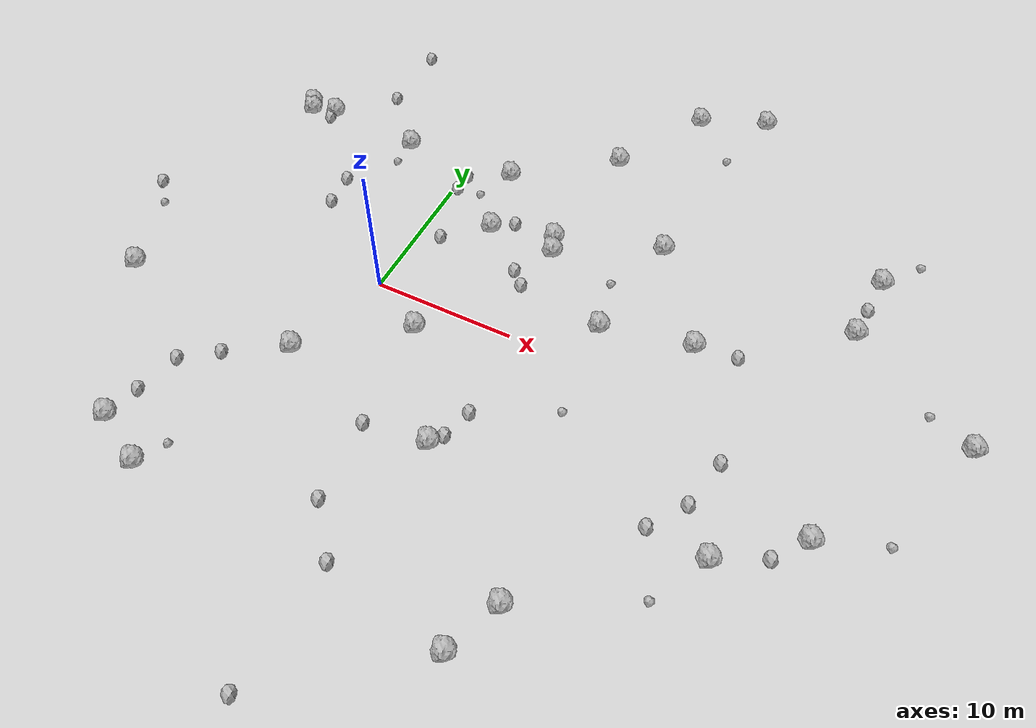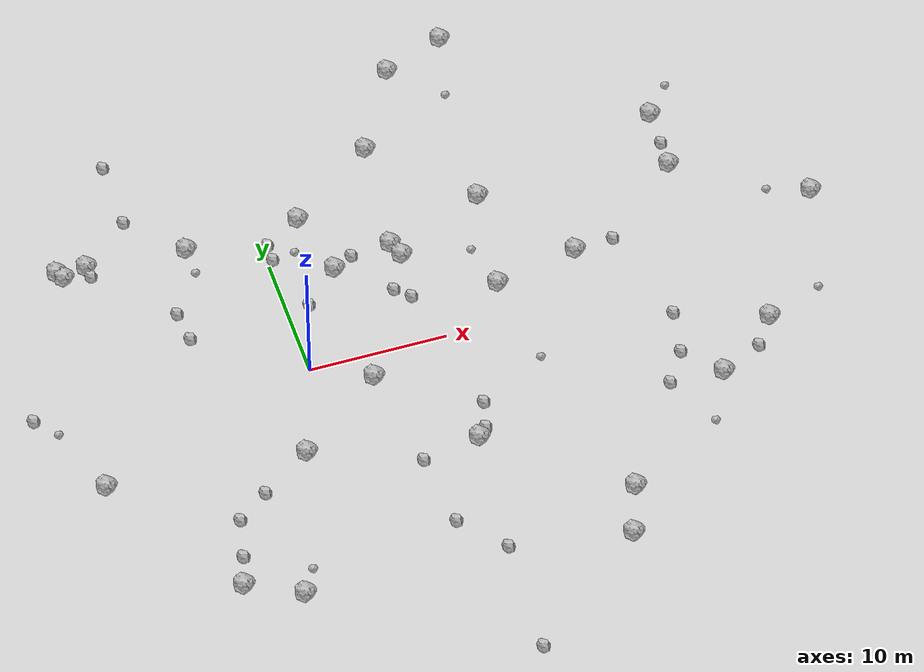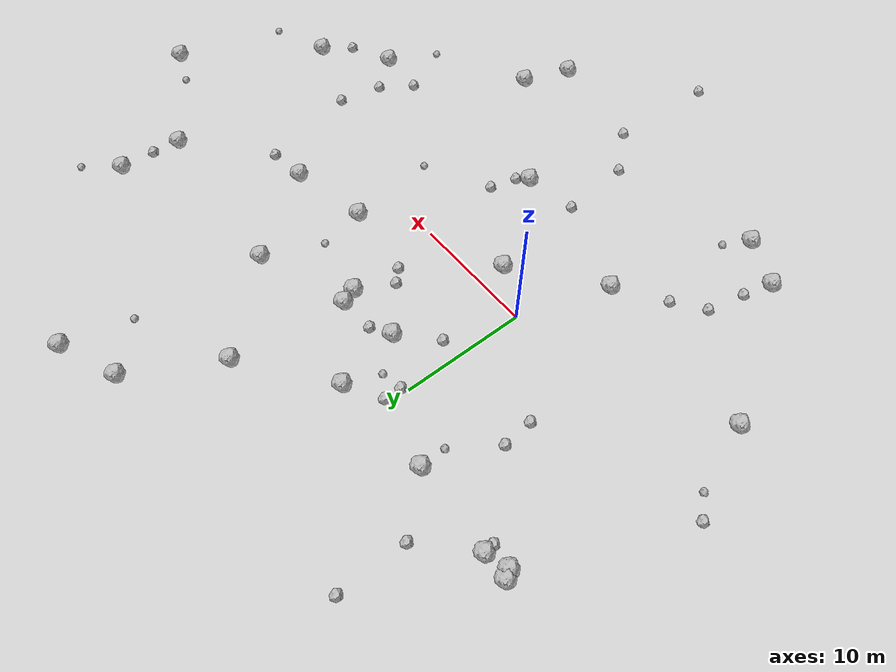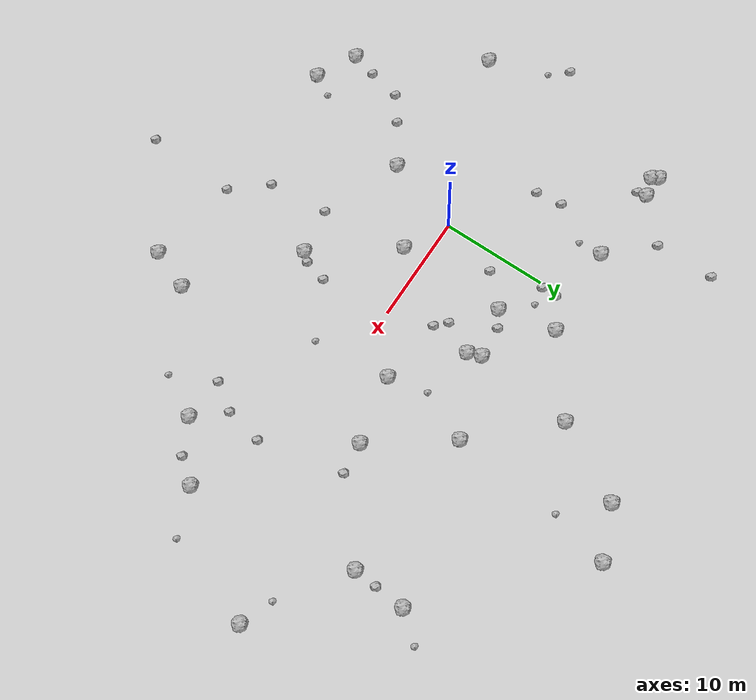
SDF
<sdf version="1.6">
 <world name="default">
  <include><uri>model://custom_ground</uri></include>
  <include><uri>model://sun</uri></include>
  <model name="rock1_0_0">
   <include><uri>model://rock1</uri><pose>-9.574869123708524 -16.79007385703004 0.5 0 0 0</pose></include>
  </model>
  <model name="rock1_0_1">
   <include><uri>model://rock1</uri><pose>-14.185482868018411 13.141109071667316 0.5 0 0 0</pose></include>
  </model>
  <model name="rock1_0_2">
   <include><uri>model://rock1</uri><pose>3.183161711726001 13.439207861971639 0.5 0 0 0</pose></include>
  </model>
  <model name="rock1_0_3">
   <include><uri>model://rock1</uri><pose>8.808953629448713 9.220673519698032 0.5 0 0 0</pose></include>
  </model>
  <model name="rock1_0_4">
   <include><uri>model://rock1</uri><pose>21.190203714288785 4.638815837935745 0.5 0 0 0</pose></include>
  </model>
  <model name="rock1_0_5">
   <include><uri>model://rock1</uri><pose>16.714045543645604 -20.561831399972156 0.5 0 0 0</pose></include>
  </model>
  <model name="rock1_0_6">
   <include><uri>model://rock1</uri><pose>4.0715729349844025 -2.1879893918191584 0.5 0 0 0</pose></include>
  </model>
  <model name="rock1_0_7">
   <include><uri>model://rock1</uri><pose>-14.54855234548559 13.726349126331328 0.5 0 0 0</pose></include>
  </model>
  <model name="rock1_0_8">
   <include><uri>model://rock1</uri><pose>14.956129256534766 3.346099133646433 0.5 0 0 0</pose></include>
  </model>
  <model name="rock1_0_9">
   <include><uri>model://rock1</uri><pose>9.809891724569248 18.482798297748445 0.5 0 0 0</pose></include>
  </model>
  <model name="rock1_0_10">
   <include><uri>model://rock1</uri><pose>18.159410886407578 -16.83518749572343 0.5 0 0 0</pose></include>
  </model>
  <model name="rock1_0_11">
   <include><uri>model://rock1</uri><pose>-12.411459987530908 13.64316098984552 0.5 0 0 0</pose></include>
  </model>
  <model name="rock1_0_12">
   <include><uri>model://rock1</uri><pose>9.276836897159338 7.968131557842007 0.5 0 0 0</pose></include>
  </model>
  <model name="rock1_0_13">
   <include><uri>model://rock1</uri><pose>4.340243749976594 8.141389771003283 0.5 0 0 0</pose></include>
  </model>
  <model name="rock1_0_14">
   <include><uri>model://rock1</uri><pose>-5.863515619924495 -18.700320483359988 0.5 0 0 0</pose></include>
  </model>
  <model name="rock1_0_15">
   <include><uri>model://rock1</uri><pose>16.187796699736538 11.677973227661752 0.5 0 0 0</pose></include>
  </model>
  <model name="rock1_0_16">
   <include><uri>model://rock1</uri><pose>9.361580387261622 -9.548358582462303 0.5 0 0 0</pose></include>
  </model>
  <model name="rock1_0_17">
   <include><uri>model://rock1</uri><pose>27.406130158293777 -9.154368287301967 0.5 0 0 0</pose></include>
  </model>
  <model name="rock1_0_18">
   <include><uri>model://rock1</uri><pose>30.71560412747546 15.438636553877814 0.5 0 0 0</pose></include>
  </model>
  <model name="rock1_0_19">
   <include><uri>model://rock1</uri><pose>30.334338108661605 10.38571048967789 0.5 0 0 0</pose></include>
  </model>
  <model name="rock1_0_20">
   <include><uri>model://rock1</uri><pose>13.667398942886912 25.483970197770248 0.5 0 0 0</pose></include>
  </model>
  <model name="rock1_0_21">
   <include><uri>model://rock1</uri><pose>-5.206692347621331 13.08040142145331 0.5 0 0 0</pose></include>
  </model>
  <model name="rock1_0_22">
   <include><uri>model://rock1</uri><pose>32.200690342745865 -5.430255425349113 0.5 0 0 0</pose></include>
  </model>
  <model name="rock1_0_23">
   <include><uri>model://rock1</uri><pose>39.226585235973246 4.870127547089943 0.5 0 0 0</pose></include>
  </model>
  <model name="rock1_0_24">
   <include><uri>model://rock1</uri><pose>18.376451594422818 27.43114792632251 0.5 0 0 0</pose></include>
  </model>
  <model name="rock1_0_25">
   <include><uri>model://rock1</uri><pose>-16.16579249229643 -5.940988652029876 0.5 0 0 0</pose></include>
  </model>
  <model name="rock1_0_26">
   <include><uri>model://rock1</uri><pose>-2.311682810059736 -7.208164576602776 0.5 0 0 0</pose></include>
  </model>
  <model name="rock2_0_0">
   <include><uri>model://rock2</uri><pose>10.034048237618222 -8.736519541761318 0.3 0 0 0</pose></include>
  </model>
  <model name="rock2_0_1">
   <include><uri>model://rock2</uri><pose>8.267623747901169 -19.02313169740516 0.3 0 0 0</pose></include>
  </model>
  <model name="rock2_0_2">
   <include><uri>model://rock2</uri><pose>1.6391106813702763 5.573884012758967 0.3 0 0 0</pose></include>
  </model>
  <model name="rock2_0_3">
   <include><uri>model://rock2</uri><pose>30.54512457409173 -7.588465767738327 0.3 0 0 0</pose></include>
  </model>
  <model name="rock2_0_4">
   <include><uri>model://rock2</uri><pose>10.594845104303452 -6.582464178360684 0.3 0 0 0</pose></include>
  </model>
  <model name="rock2_0_5">
   <include><uri>model://rock2</uri><pose>-8.312883304383732 -11.377120057153885 0.3 0 0 0</pose></include>
  </model>
  <model name="rock2_0_6">
   <include><uri>model://rock2</uri><pose>-8.978737009741405 -14.430953761993893 0.3 0 0 0</pose></include>
  </model>
  <model name="rock2_0_7">
   <include><uri>model://rock2</uri><pose>0.3824911184552491 10.394549399347383 0.3 0 0 0</pose></include>
  </model>
  <model name="rock2_0_8">
   <include><uri>model://rock2</uri><pose>-7.465351421417047 7.576823413634038 0.3 0 0 0</pose></include>
  </model>
  <model name="rock2_0_9">
   <include><uri>model://rock2</uri><pose>-19.501371784328946 1.2038466642157566 0.3 0 0 0</pose></include>
  </model>
  <model name="rock2_0_10">
   <include><uri>model://rock2</uri><pose>25.83861604503656 -2.962006658952248 0.3 0 0 0</pose></include>
  </model>
  <model name="rock2_0_11">
   <include><uri>model://rock2</uri><pose>7.849819711046596 -27.571609447680057 0.3 0 0 0</pose></include>
  </model>
  <model name="rock2_0_12">
   <include><uri>model://rock2</uri><pose>-6.040213940606856 -9.66836136146554 0.3 0 0 0</pose></include>
  </model>
  <model name="rock2_0_13">
   <include><uri>model://rock2</uri><pose>-8.867036312636092 22.589340358944916 0.3 0 0 0</pose></include>
  </model>
  <model name="rock2_0_14">
   <include><uri>model://rock2</uri><pose>7.759716976146052 5.1214487661928985 0.3 0 0 0</pose></include>
  </model>
  <model name="rock2_0_15">
   <include><uri>model://rock2</uri><pose>-8.83003370775212 17.04531609246669 0.3 0 0 0</pose></include>
  </model>
  <model name="rock2_0_16">
   <include><uri>model://rock2</uri><pose>-12.34644500851674 12.814119806406893 0.3 0 0 0</pose></include>
  </model>
  <model name="rock2_0_17">
   <include><uri>model://rock2</uri><pose>5.593837671610583 -15.873761594032828 0.3 0 0 0</pose></include>
  </model>
  <model name="rock2_0_18">
   <include><uri>model://rock2</uri><pose>30.500427591717752 12.605839885750335 0.3 0 0 0</pose></include>
  </model>
  <model name="rock2_0_19">
   <include><uri>model://rock2</uri><pose>24.09984355309814 4.9470389821148615 0.3 0 0 0</pose></include>
  </model>
  <model name="rock2_0_20">
   <include><uri>model://rock2</uri><pose>-7.206990615858512 5.085687797235309 0.3 0 0 0</pose></include>
  </model>
  <model name="rock2_0_21">
   <include><uri>model://rock2</uri><pose>5.090958671865565 -10.207763736634988 0.3 0 0 0</pose></include>
  </model>
  <model name="rock2_0_22">
   <include><uri>model://rock2</uri><pose>5.819130542349765 9.05829838737472 0.3 0 0 0</pose></include>
  </model>
  <model name="rock2_0_23">
   <include><uri>model://rock2</uri><pose>23.47187936257346 -8.895508581681149 0.3 0 0 0</pose></include>
  </model>
  <model name="rock2_0_24">
   <include><uri>model://rock2</uri><pose>0.40921171297273773 11.808901074296138 0.3 0 0 0</pose></include>
  </model>
  <model name="rock2_0_25">
   <include><uri>model://rock2</uri><pose>8.761084313139754 4.1301336897070655 0.3 0 0 0</pose></include>
  </model>
  <model name="rock2_0_26">
   <include><uri>model://rock2</uri><pose>25.130466555567516 -6.449081843777364 0.3 0 0 0</pose></include>
  </model>
  <model name="rock3_0_0">
   <include><uri>model://rock3</uri><pose>25.3667530887545 -12.998135052525448 0.2 0 0 0</pose></include>
  </model>
  <model name="rock3_0_1">
   <include><uri>model://rock3</uri><pose>2.084301238711081 10.617736016485551 0.2 0 0 0</pose></include>
  </model>
  <model name="rock3_0_2">
   <include><uri>model://rock3</uri><pose>-5.166307922711731 10.890870495040943 0.2 0 0 0</pose></include>
  </model>
  <model name="rock3_0_3">
   <include><uri>model://rock3</uri><pose>-4.794067120473443 -16.79904079203046 0.2 0 0 0</pose></include>
  </model>
  <model name="rock3_0_4">
   <include><uri>model://rock3</uri><pose>36.469931228763876 -3.790635897342586 0.2 0 0 0</pose></include>
  </model>
  <model name="rock3_0_5">
   <include><uri>model://rock3</uri><pose>32.752907331548776 17.963517423733776 0.2 0 0 0</pose></include>
  </model>
  <model name="rock3_0_6">
   <include><uri>model://rock3</uri><pose>15.701734360354472 -3.9160692034342723 0.2 0 0 0</pose></include>
  </model>
  <model name="rock3_0_7">
   <include><uri>model://rock3</uri><pose>14.148200681811694 7.021509025279002 0.2 0 0 0</pose></include>
  </model>
  <model name="rock3_0_8">
   <include><uri>model://rock3</uri><pose>-18.129730689842173 -0.44689415904500507 0.2 0 0 0</pose></include>
  </model>
  <model name="rock3_0_9">
   <include><uri>model://rock3</uri><pose>36.23161518929523 6.0326762228818325 0.2 0 0 0</pose></include>
  </model>
  <model name="rock3_0_10">
   <include><uri>model://rock3</uri><pose>17.036158683195353 22.00823247087935 0.2 0 0 0</pose></include>
  </model>
 </world>
</sdf>
